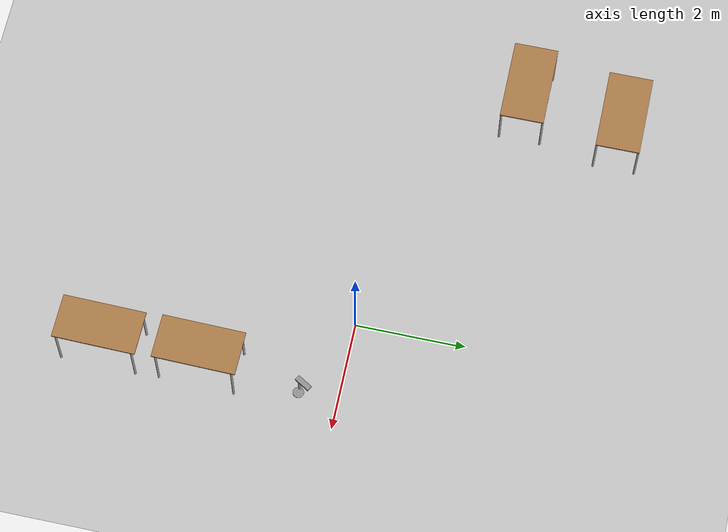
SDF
<sdf version="1.6">
 <world name="default">
  <model name="ground_plane">
   <static>1</static>
   <link name="link">
    <collision name="collision">
     <geometry><plane><normal>0 0 1</normal><size>100 100</size></plane></geometry>
     <surface>
      <contact><collide_bitmask>65535</collide_bitmask></contact>
      <friction><ode><mu>100</mu><mu2>50</mu2></ode></friction>
     </surface>
    </collision>
    <visual name="visual">
     <cast_shadows>0</cast_shadows>
     <geometry><plane><normal>0 0 1</normal><size>100 100</size></plane></geometry>
     <material>
      <script><uri>file://media/materials/scripts/gazebo.material</uri><name>Gazebo/Grey</name></script>
     </material>
    </visual>
   </link>
  </model>
  <model name="table">
   <static>1</static>
   <link name="link">
    <collision name="surface">
     <pose>0 0 1 0 -0 0</pose>
     <geometry><box><size>1.5 0.8 0.03</size></box></geometry>
     <surface><friction><ode><mu>0.6</mu><mu2>0.6</mu2></ode></friction></surface>
    </collision>
    <visual name="visual1">
     <pose>0 0 1 0 -0 0</pose>
     <geometry><box><size>1.5 0.8 0.03</size></box></geometry>
     <material>
      <script><uri>file://media/materials/scripts/gazebo.material</uri><name>Gazebo/Wood</name></script>
     </material>
    </visual>
    <collision name="front_left_leg">
     <pose>0.68 0.38 0.5 0 -0 0</pose>
     <geometry><cylinder><radius>0.02</radius><length>1</length></cylinder></geometry>
    </collision>
    <visual name="front_left_leg">
     <pose>0.68 0.38 0.5 0 -0 0</pose>
     <geometry><cylinder><radius>0.02</radius><length>1</length></cylinder></geometry>
     <material>
      <script><uri>file://media/materials/scripts/gazebo.material</uri><name>Gazebo/Grey</name></script>
     </material>
    </visual>
    <collision name="front_right_leg">
     <pose>0.68 -0.38 0.5 0 -0 0</pose>
     <geometry><cylinder><radius>0.02</radius><length>1</length></cylinder></geometry>
    </collision>
    <visual name="front_right_leg">
     <pose>0.68 -0.38 0.5 0 -0 0</pose>
     <geometry><cylinder><radius>0.02</radius><length>1</length></cylinder></geometry>
     <material>
      <script><uri>file://media/materials/scripts/gazebo.material</uri><name>Gazebo/Grey</name></script>
     </material>
    </visual>
    <collision name="back_right_leg">
     <pose>-0.68 -0.38 0.5 0 -0 0</pose>
     <geometry><cylinder><radius>0.02</radius><length>1</length></cylinder></geometry>
    </collision>
    <visual name="back_right_leg">
     <pose>-0.68 -0.38 0.5 0 -0 0</pose>
     <geometry><cylinder><radius>0.02</radius><length>1</length></cylinder></geometry>
     <material>
      <script><uri>file://media/materials/scripts/gazebo.material</uri><name>Gazebo/Grey</name></script>
     </material>
    </visual>
    <collision name="back_left_leg">
     <pose>-0.68 0.38 0.5 0 -0 0</pose>
     <geometry><cylinder><radius>0.02</radius><length>1</length></cylinder></geometry>
    </collision>
    <visual name="back_left_leg">
     <pose>-0.68 0.38 0.5 0 -0 0</pose>
     <geometry><cylinder><radius>0.02</radius><length>1</length></cylinder></geometry>
     <material>
      <script><uri>file://media/materials/scripts/gazebo.material</uri><name>Gazebo/Grey</name></script>
     </material>
    </visual>
   </link>
   <pose>1.3188 -2.49603 0 0 -0 1.55156</pose>
  </model>
  <model name="table_0">
   <static>1</static>
   <link name="link">
    <collision name="surface">
     <pose>0 0 1 0 -0 0</pose>
     <geometry><box><size>1.5 0.8 0.03</size></box></geometry>
     <surface><friction><ode><mu>0.6</mu><mu2>0.6</mu2></ode></friction></surface>
    </collision>
    <visual name="visual1">
     <pose>0 0 1 0 -0 0</pose>
     <geometry><box><size>1.5 0.8 0.03</size></box></geometry>
     <material>
      <script><uri>file://media/materials/scripts/gazebo.material</uri><name>Gazebo/Wood</name></script>
     </material>
    </visual>
    <collision name="front_left_leg">
     <pose>0.68 0.38 0.5 0 -0 0</pose>
     <geometry><cylinder><radius>0.02</radius><length>1</length></cylinder></geometry>
    </collision>
    <visual name="front_left_leg">
     <pose>0.68 0.38 0.5 0 -0 0</pose>
     <geometry><cylinder><radius>0.02</radius><length>1</length></cylinder></geometry>
     <material>
      <script><uri>file://media/materials/scripts/gazebo.material</uri><name>Gazebo/Grey</name></script>
     </material>
    </visual>
    <collision name="front_right_leg">
     <pose>0.68 -0.38 0.5 0 -0 0</pose>
     <geometry><cylinder><radius>0.02</radius><length>1</length></cylinder></geometry>
    </collision>
    <visual name="front_right_leg">
     <pose>0.68 -0.38 0.5 0 -0 0</pose>
     <geometry><cylinder><radius>0.02</radius><length>1</length></cylinder></geometry>
     <material>
      <script><uri>file://media/materials/scripts/gazebo.material</uri><name>Gazebo/Grey</name></script>
     </material>
    </visual>
    <collision name="back_right_leg">
     <pose>-0.68 -0.38 0.5 0 -0 0</pose>
     <geometry><cylinder><radius>0.02</radius><length>1</length></cylinder></geometry>
    </collision>
    <visual name="back_right_leg">
     <pose>-0.68 -0.38 0.5 0 -0 0</pose>
     <geometry><cylinder><radius>0.02</radius><length>1</length></cylinder></geometry>
     <material>
      <script><uri>file://media/materials/scripts/gazebo.material</uri><name>Gazebo/Grey</name></script>
     </material>
    </visual>
    <collision name="back_left_leg">
     <pose>-0.68 0.38 0.5 0 -0 0</pose>
     <geometry><cylinder><radius>0.02</radius><length>1</length></cylinder></geometry>
    </collision>
    <visual name="back_left_leg">
     <pose>-0.68 0.38 0.5 0 -0 0</pose>
     <geometry><cylinder><radius>0.02</radius><length>1</length></cylinder></geometry>
     <material>
      <script><uri>file://media/materials/scripts/gazebo.material</uri><name>Gazebo/Grey</name></script>
     </material>
    </visual>
   </link>
   <pose>-4.67316 3.96857 0 0 -0 0</pose>
  </model>
  <model name="table_1">
   <static>1</static>
   <link name="link">
    <collision name="surface">
     <pose>0 0 1 0 -0 0</pose>
     <geometry><box><size>1.5 0.8 0.03</size></box></geometry>
     <surface><friction><ode><mu>0.6</mu><mu2>0.6</mu2></ode></friction></surface>
    </collision>
    <visual name="visual1">
     <pose>0 0 1 0 -0 0</pose>
     <geometry><box><size>1.5 0.8 0.03</size></box></geometry>
     <material>
      <script><uri>file://media/materials/scripts/gazebo.material</uri><name>Gazebo/Wood</name></script>
     </material>
    </visual>
    <collision name="front_left_leg">
     <pose>0.68 0.38 0.5 0 -0 0</pose>
     <geometry><cylinder><radius>0.02</radius><length>1</length></cylinder></geometry>
    </collision>
    <visual name="front_left_leg">
     <pose>0.68 0.38 0.5 0 -0 0</pose>
     <geometry><cylinder><radius>0.02</radius><length>1</length></cylinder></geometry>
     <material>
      <script><uri>file://media/materials/scripts/gazebo.material</uri><name>Gazebo/Grey</name></script>
     </material>
    </visual>
    <collision name="front_right_leg">
     <pose>0.68 -0.38 0.5 0 -0 0</pose>
     <geometry><cylinder><radius>0.02</radius><length>1</length></cylinder></geometry>
    </collision>
    <visual name="front_right_leg">
     <pose>0.68 -0.38 0.5 0 -0 0</pose>
     <geometry><cylinder><radius>0.02</radius><length>1</length></cylinder></geometry>
     <material>
      <script><uri>file://media/materials/scripts/gazebo.material</uri><name>Gazebo/Grey</name></script>
     </material>
    </visual>
    <collision name="back_right_leg">
     <pose>-0.68 -0.38 0.5 0 -0 0</pose>
     <geometry><cylinder><radius>0.02</radius><length>1</length></cylinder></geometry>
    </collision>
    <visual name="back_right_leg">
     <pose>-0.68 -0.38 0.5 0 -0 0</pose>
     <geometry><cylinder><radius>0.02</radius><length>1</length></cylinder></geometry>
     <material>
      <script><uri>file://media/materials/scripts/gazebo.material</uri><name>Gazebo/Grey</name></script>
     </material>
    </visual>
    <collision name="back_left_leg">
     <pose>-0.68 0.38 0.5 0 -0 0</pose>
     <geometry><cylinder><radius>0.02</radius><length>1</length></cylinder></geometry>
    </collision>
    <visual name="back_left_leg">
     <pose>-0.68 0.38 0.5 0 -0 0</pose>
     <geometry><cylinder><radius>0.02</radius><length>1</length></cylinder></geometry>
     <material>
      <script><uri>file://media/materials/scripts/gazebo.material</uri><name>Gazebo/Grey</name></script>
     </material>
    </visual>
   </link>
   <pose>-4.90249 2.17552 0 0 -0 0</pose>
  </model>
  <model name="table_clone">
   <static>1</static>
   <link name="link">
    <collision name="surface">
     <pose>0 0 1 0 -0 0</pose>
     <geometry><box><size>1.5 0.8 0.03</size></box></geometry>
     <surface><friction><ode><mu>0.6</mu><mu2>0.6</mu2></ode></friction></surface>
    </collision>
    <visual name="visual1">
     <pose>0 0 1 0 -0 0</pose>
     <geometry><box><size>1.5 0.8 0.03</size></box></geometry>
     <material>
      <script><uri>file://media/materials/scripts/gazebo.material</uri><name>Gazebo/Wood</name></script>
     </material>
    </visual>
    <collision name="front_left_leg">
     <pose>0.68 0.38 0.5 0 -0 0</pose>
     <geometry><cylinder><radius>0.02</radius><length>1</length></cylinder></geometry>
    </collision>
    <visual name="front_left_leg">
     <pose>0.68 0.38 0.5 0 -0 0</pose>
     <geometry><cylinder><radius>0.02</radius><length>1</length></cylinder></geometry>
     <material>
      <script><uri>file://media/materials/scripts/gazebo.material</uri><name>Gazebo/Grey</name></script>
     </material>
    </visual>
    <collision name="front_right_leg">
     <pose>0.68 -0.38 0.5 0 -0 0</pose>
     <geometry><cylinder><radius>0.02</radius><length>1</length></cylinder></geometry>
    </collision>
    <visual name="front_right_leg">
     <pose>0.68 -0.38 0.5 0 -0 0</pose>
     <geometry><cylinder><radius>0.02</radius><length>1</length></cylinder></geometry>
     <material>
      <script><uri>file://media/materials/scripts/gazebo.material</uri><name>Gazebo/Grey</name></script>
     </material>
    </visual>
    <collision name="back_right_leg">
     <pose>-0.68 -0.38 0.5 0 -0 0</pose>
     <geometry><cylinder><radius>0.02</radius><length>1</length></cylinder></geometry>
    </collision>
    <visual name="back_right_leg">
     <pose>-0.68 -0.38 0.5 0 -0 0</pose>
     <geometry><cylinder><radius>0.02</radius><length>1</length></cylinder></geometry>
     <material>
      <script><uri>file://media/materials/scripts/gazebo.material</uri><name>Gazebo/Grey</name></script>
     </material>
    </visual>
    <collision name="back_left_leg">
     <pose>-0.68 0.38 0.5 0 -0 0</pose>
     <geometry><cylinder><radius>0.02</radius><length>1</length></cylinder></geometry>
    </collision>
    <visual name="back_left_leg">
     <pose>-0.68 0.38 0.5 0 -0 0</pose>
     <geometry><cylinder><radius>0.02</radius><length>1</length></cylinder></geometry>
     <material>
      <script><uri>file://media/materials/scripts/gazebo.material</uri><name>Gazebo/Grey</name></script>
     </material>
    </visual>
   </link>
   <pose>1.31608 -4.27959 0 0 -0 1.55156</pose>
  </model>
  <model name="HumanoidRobot_0">
   <link name="link_0">
    <pose>0.041667 -0.016667 -0.254167 0 -0 0</pose>
    <inertial>
     <mass>1</mass>
     <inertia><ixx>0.145833</ixx><ixy>0</ixy><ixz>0</ixz><iyy>0.145833</iyy><iyz>0</iyz><izz>0.125</izz></inertia>
    </inertial>
    <visual name="visual">
     <geometry><cylinder><radius>0.1</radius><length>0.0125</length></cylinder></geometry>
     <material>
      <lighting>1</lighting>
      <script><uri>file://media/materials/scripts/gazebo.material</uri><name>Gazebo/Grey</name></script>
      <shader type="pixel"><normal_map>__default__</normal_map></shader>
      <ambient>0.3 0.3 0.3 1</ambient>
      <diffuse>0.7 0.7 0.7 1</diffuse>
      <specular>0.01 0.01 0.01 1</specular>
      <emissive>0 0 0 1</emissive>
     </material>
    </visual>
    <collision name="collision">
     <geometry><cylinder><radius>0.1</radius><length>0.0125</length></cylinder></geometry>
     <surface>
      <friction>
       <ode><mu>1</mu><mu2>1</mu2><fdir1>0 0 0</fdir1><slip1>0</slip1><slip2>0</slip2></ode>
       <torsional>
        <coefficient>1</coefficient>
        <patch_radius>0</patch_radius>
        <surface_radius>0</surface_radius>
        <use_patch_radius>1</use_patch_radius>
        <ode><slip>0</slip></ode>
       </torsional>
      </friction>
      <bounce><restitution_coefficient>0</restitution_coefficient><threshold>1e+06</threshold></bounce>
      <contact>
       <collide_without_contact>0</collide_without_contact>
       <collide_without_contact_bitmask>1</collide_without_contact_bitmask>
       <collide_bitmask>1</collide_bitmask>
       <ode>
        <soft_cfm>0</soft_cfm>
        <soft_erp>0.2</soft_erp>
        <kp>1e+13</kp>
        <kd>1</kd>
        <max_vel>0.01</max_vel>
        <min_depth>0</min_depth>
       </ode>
       <bullet>
        <split_impulse>1</split_impulse>
        <split_impulse_penetration_threshold>-0.01</split_impulse_penetration_threshold>
        <soft_cfm>0</soft_cfm>
        <soft_erp>0.2</soft_erp>
        <kp>1e+13</kp>
        <kd>1</kd>
       </bullet>
      </contact>
     </surface>
    </collision>
   </link>
   <link name="link_1">
    <pose>-0.033333 -0.054167 -0.010417 0 -0 0</pose>
    <inertial>
     <mass>1</mass>
     <inertia><ixx>0.145833</ixx><ixy>0</ixy><ixz>0</ixz><iyy>0.145833</iyy><iyz>0</iyz><izz>0.125</izz></inertia>
    </inertial>
    <visual name="visual">
     <geometry><cylinder><radius>0.025</radius><length>0.5</length></cylinder></geometry>
     <material>
      <lighting>1</lighting>
      <script><uri>file://media/materials/scripts/gazebo.material</uri><name>Gazebo/Grey</name></script>
      <shader type="pixel"><normal_map>__default__</normal_map></shader>
      <ambient>0.3 0.3 0.3 1</ambient>
      <diffuse>0.7 0.7 0.7 1</diffuse>
      <specular>0.01 0.01 0.01 1</specular>
      <emissive>0 0 0 1</emissive>
     </material>
    </visual>
    <collision name="collision">
     <geometry><cylinder><radius>0.025</radius><length>0.5</length></cylinder></geometry>
     <surface>
      <friction>
       <ode><mu>1</mu><mu2>1</mu2><fdir1>0 0 0</fdir1><slip1>0</slip1><slip2>0</slip2></ode>
       <torsional>
        <coefficient>1</coefficient>
        <patch_radius>0</patch_radius>
        <surface_radius>0</surface_radius>
        <use_patch_radius>1</use_patch_radius>
        <ode><slip>0</slip></ode>
       </torsional>
      </friction>
      <bounce><restitution_coefficient>0</restitution_coefficient><threshold>1e+06</threshold></bounce>
      <contact>
       <collide_without_contact>0</collide_without_contact>
       <collide_without_contact_bitmask>1</collide_without_contact_bitmask>
       <collide_bitmask>1</collide_bitmask>
       <ode>
        <soft_cfm>0</soft_cfm>
        <soft_erp>0.2</soft_erp>
        <kp>1e+13</kp>
        <kd>1</kd>
        <max_vel>0.01</max_vel>
        <min_depth>0</min_depth>
       </ode>
       <bullet>
        <split_impulse>1</split_impulse>
        <split_impulse_penetration_threshold>-0.01</split_impulse_penetration_threshold>
        <soft_cfm>0</soft_cfm>
        <soft_erp>0.2</soft_erp>
        <kp>1e+13</kp>
        <kd>1</kd>
       </bullet>
      </contact>
     </surface>
    </collision>
   </link>
   <link name="link_2">
    <pose>-0.008333 0.070833 0.264583 0 -0 0</pose>
    <inertial>
     <mass>1</mass>
     <inertia>
      <ixx>0.166667</ixx>
      <ixy>0</ixy>
      <ixz>0</ixz>
      <iyy>0.166667</iyy>
      <iyz>0</iyz>
      <izz>0.166667</izz>
     </inertia>
    </inertial>
    <visual name="visual">
     <geometry><box><size>0.1 0.3 0.05</size></box></geometry>
     <material>
      <lighting>1</lighting>
      <script><uri>file://media/materials/scripts/gazebo.material</uri><name>Gazebo/Grey</name></script>
      <shader type="pixel"><normal_map>__default__</normal_map></shader>
      <ambient>0.3 0.3 0.3 1</ambient>
      <diffuse>0.7 0.7 0.7 1</diffuse>
      <specular>0.01 0.01 0.01 1</specular>
      <emissive>0 0 0 1</emissive>
     </material>
    </visual>
    <collision name="collision">
     <geometry><box><size>0.1 0.3 0.05</size></box></geometry>
     <surface>
      <friction>
       <ode><mu>1</mu><mu2>1</mu2><fdir1>0 0 0</fdir1><slip1>0</slip1><slip2>0</slip2></ode>
       <torsional>
        <coefficient>1</coefficient>
        <patch_radius>0</patch_radius>
        <surface_radius>0</surface_radius>
        <use_patch_radius>1</use_patch_radius>
        <ode><slip>0</slip></ode>
       </torsional>
      </friction>
      <bounce><restitution_coefficient>0</restitution_coefficient><threshold>1e+06</threshold></bounce>
      <contact>
       <collide_without_contact>0</collide_without_contact>
       <collide_without_contact_bitmask>1</collide_without_contact_bitmask>
       <collide_bitmask>1</collide_bitmask>
       <ode>
        <soft_cfm>0</soft_cfm>
        <soft_erp>0.2</soft_erp>
        <kp>1e+13</kp>
        <kd>1</kd>
        <max_vel>0.01</max_vel>
        <min_depth>0</min_depth>
       </ode>
       <bullet>
        <split_impulse>1</split_impulse>
        <split_impulse_penetration_threshold>-0.01</split_impulse_penetration_threshold>
        <soft_cfm>0</soft_cfm>
        <soft_erp>0.2</soft_erp>
        <kp>1e+13</kp>
        <kd>1</kd>
       </bullet>
      </contact>
     </surface>
    </collision>
   </link>
   <joint name="link_0_JOINT_0" type="fixed">
    <parent>link_0</parent>
    <child>link_1</child>
    <physics>
     <ode><limit><cfm>0</cfm><erp>0.2</erp></limit><suspension><cfm>0</cfm><erp>0.2</erp></suspension></ode>
    </physics>
   </joint>
   <joint name="link_1_JOINT_2" type="revolute">
    <parent>link_1</parent>
    <child>link_2</child>
    <axis>
     <xyz>1 0 0</xyz>
     <use_parent_model_frame>0</use_parent_model_frame>
     <limit>
      <lower>-1.79769e+308</lower>
      <upper>1.79769e+308</upper>
      <effort>-1</effort>
      <velocity>-1</velocity>
     </limit>
     <dynamics>
      <spring_reference>0</spring_reference>
      <spring_stiffness>0</spring_stiffness>
      <damping>0</damping>
     </dynamics>
    </axis>
    <physics>
     <ode><limit><cfm>0</cfm><erp>0.2</erp></limit><suspension><cfm>0</cfm><erp>0.2</erp></suspension></ode>
    </physics>
   </joint>
   <static>0</static>
   <pose>1.43184 -0.675111 0.260412 0 1e-06 -0.541075</pose>
  </model>
 </world>
</sdf>
